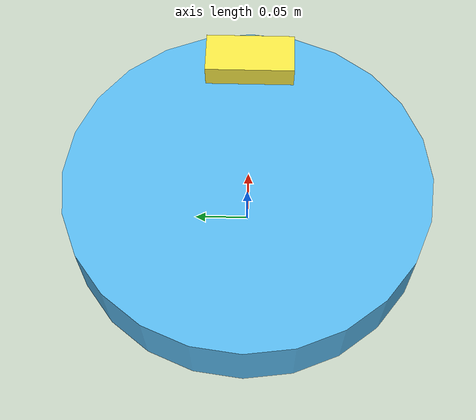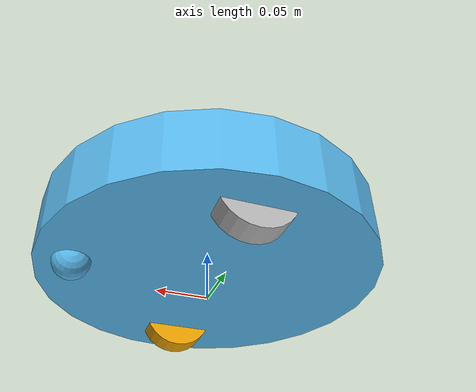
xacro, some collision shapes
<?xml version="1.0" ?>
<robot name="xerbo" xmlns:xacro="http://ros.org/wiki/xacro">
  <!-- Define intertial property macros  -->
  <xacro:macro name="box_inertia" params="m w h d">
    <inertial>
      <origin xyz="0 0 0" rpy="${pi/2} 0 ${pi/2}"/>
      <mass value="${m}"/>
      <inertia ixx="${(m/12) * (h*h + d*d)}" ixy="0.0" ixz="0.0" iyy="${(m/12) * (w*w + d*d)}" iyz="0.0" izz="${(m/12) * (w*w + h*h)}"/>
    </inertial>
  </xacro:macro>

  <xacro:include filename="$(find xerbo_description)/src/urdf/create_base.urdf.xacro" />
  <xacro:create_base wheel_separation="0.235" base_diameter="0.3485">
    <!-- "file://" syntax is compatible with both RVIZ and Gazebo -->
    <mesh filename="file://$(find xerbo_description)/src/meshes/xerbo.dae" />
  </xacro:create_base>

  <xacro:include filename="$(find xerbo_description)/src/urdf/imu_link.urdf.xacro" />
  <xacro:create_imu connected_to="base_link" />
</robot>

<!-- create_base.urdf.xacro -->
<robot xmlns:xacro="http://ros.org/wiki/xacro">
  <xacro:property name="PI" value="3.1415926535897931" />

  <xacro:macro name="create_wheel" params="prefix y_offset wheel_radius wheel_width">
    <link name="${prefix}_wheel_link">
      <inertial>
        <origin xyz="0 0 0" />
        <mass value="0.01" />
        <inertia ixx="0.001" ixy="0.0" ixz="0.0" iyy="0.001" iyz="0.0" izz="0.001" />
      </inertial>

      <visual>
        <origin xyz="0 0 0" rpy="0 ${PI/2} ${PI/2}" />
        <geometry>
          <cylinder radius="${wheel_radius}" length="${wheel_width}" />
        </geometry>
      </visual>

      <collision>
        <origin xyz="0 0 0" rpy="0 ${PI/2} ${PI/2}" />
        <geometry>
          <cylinder radius="${wheel_radius}" length="${wheel_width}" />
        </geometry>
      </collision>
    </link>

    <joint name="${prefix}_wheel_joint" type="continuous">
      <origin xyz="0 ${y_offset} 0.015" rpy="0 0 0" />
      <parent link="base_link" />
      <child link="${prefix}_wheel_link" />
      <axis xyz="0 1 0" />
    </joint>
  </xacro:macro>

  <xacro:macro name="create_base" params="diffdrive_update_rate:=40 wheel_separation wheel_radius:=0.036 wheel_width:=0.024 wheel_torque:=1.0 wheel_accel:=1.8 mass_kg:=3.5 base_diameter *mesh">
    <xacro:include filename="$(find xerbo_description)/src/urdf/create_base_gazebo.urdf.xacro" />

    <link name="base_footprint">
      <visual>
        <origin xyz="0 0 0" rpy="0 0 0" />
        <geometry>
          <box size="0.001 0.001 0.001" />
        </geometry>
        <material name="Green" />
      </visual>

      <collision>
        <origin xyz="0 0 0.017" rpy="0 0 0" />
        <geometry>
          <box size="0.001 0.001 0.001" />
        </geometry>
      </collision>
    </link>

    <link name="base_link">
      <inertial>
        <mass value="2" />
        <origin xyz="0 0 0.0" />
        <inertia ixx="0.01" ixy="0.0" ixz="0.0" iyy="0.01" iyz="0.0" izz="0.5" />
      </inertial>

      <visual>
        <origin xyz=" 0 0 0.0308" rpy="0 0 0" />
        <geometry>
          <xacro:insert_block name="mesh" />
        </geometry>
      </visual>

      <collision>
        <origin xyz="0.0 0.0 0.0308" rpy="0 0 0" />
        <geometry>
          <cylinder length="0.0611632" radius="0.16495" />
        </geometry>
      </collision>
    </link>

    <link name="wall_sensor_link">
      <inertial>
        <mass value="0.01" />
        <origin xyz="0 0 0" />
        <inertia ixx="0.001" ixy="0.0" ixz="0.0" iyy="0.001" iyz="0.0" izz="0.001" />
      </inertial>
    </link>

    <link name="left_cliff_sensor_link">
      <inertial>
        <mass value="0.01" />
        <origin xyz="0 0 0" />
        <inertia ixx="0.001" ixy="0.0" ixz="0.0" iyy="0.001" iyz="0.0" izz="0.001" />
      </inertial>
    </link>

    <link name="right_cliff_sensor_link">
      <inertial>
        <mass value="0.01" />
        <origin xyz="0 0 0" />
        <inertia ixx="0.001" ixy="0.0" ixz="0.0" iyy="0.001" iyz="0.0" izz="0.001" />
      </inertial>
    </link>

    <link name="leftfront_cliff_sensor_link">
      <inertial>
        <mass value="0.01" />
        <origin xyz="0 0 0" />
        <inertia ixx="1.0" ixy="0.0" ixz="0.0" iyy="0.01" iyz="0.0" izz="0.01" />
      </inertial>
    </link>

    <link name="rightfront_cliff_sensor_link">
      <inertial>
        <mass value="0.01" />
        <origin xyz="0 0 0" />
        <inertia ixx="0.001" ixy="0.0" ixz="0.0" iyy="0.001" iyz="0.0" izz="0.001" />
      </inertial>
    </link>

    <joint name="base_footprint_joint" type="fixed">
      <origin xyz="0 0 0.017" rpy="0 0 0" />
      <parent link="base_footprint" />
      <child link="base_link" />
    </joint>

    <joint name="base_wall_sensor_joint" type="fixed">
      <origin xyz="0.09 -0.120 0.042" rpy="0 0 -1.0" />
      <parent link="base_link" />
      <child link="wall_sensor_link" />
    </joint>

    <joint name="base_left_cliff_sensor_joint" type="fixed">
      <origin xyz="0.07 0.14 0.01" rpy="0 ${PI/2} 0" />
      <parent link="base_link" />
      <child link="left_cliff_sensor_link" />
    </joint>

    <joint name="base_right_cliff_sensor_joint" type="fixed">
      <origin xyz="0.07 -0.14 0.01" rpy="0 ${PI/2} 0" />
      <parent link="base_link" />
      <child link="right_cliff_sensor_link" />
    </joint>

    <joint name="base_leftfront_cliff_sensor_joint" type="fixed">
      <origin xyz="0.15 0.04 0.01" rpy="0 ${PI/2} 0" />
      <parent link="base_link" />
      <child link="leftfront_cliff_sensor_link" />
    </joint>

    <joint name="base_rightfront_cliff_sensor_joint" type="fixed">
      <origin xyz="0.15 -0.04 0.01" rpy="0 ${PI/2} 0" />
      <parent link="base_link" />
      <child link="rightfront_cliff_sensor_link" />
    </joint>

    <xacro:create_wheel prefix="left" y_offset="${wheel_separation / 2}" wheel_radius="${wheel_radius}" wheel_width="${wheel_width}"/>
    <xacro:create_wheel prefix="right" y_offset="${wheel_separation / -2}" wheel_radius="${wheel_radius}" wheel_width="${wheel_width}"/>

    <link name="front_wheel_link">
      <inertial>
        <origin xyz="0 0 0" />
        <mass value="0.01" />
        <inertia ixx="0.001" ixy="0.0" ixz="0.0" iyy="0.001" iyz="0.0" izz="0.001" />
      </inertial>

      <visual>
        <origin xyz="0 0 0" rpy="0 ${PI/2} ${PI/2}" />
        <geometry>
          <sphere radius="0.018" />
        </geometry>
      </visual>

      <collision>
        <origin xyz="0 0 0" rpy="0 ${PI/2} ${PI/2}" />
        <geometry>
          <sphere radius="0.018" />
        </geometry>
      </collision>
    </link>

    <!-- fixed because there's no transmission -->
    <joint name="front_castor_joint" type="fixed">
      <origin xyz="0.13 0 0.0" rpy="0 0 0" />
      <parent link="base_link" />
      <child link="front_wheel_link" />
      <axis xyz="0 1 0" />
    </joint>

    <joint name="gyro_joint" type="fixed">
      <axis xyz="0 1 0" />
      <origin xyz="0 0 0.04" rpy="0 0 0" />
      <parent link="base_link" />
      <child link="gyro_link" />
    </joint>
    <link name="gyro_link">
      <inertial>
        <mass value="0.001" />
        <origin xyz="0 0 0" rpy="0 0 0" />
        <inertia ixx="0.0001" ixy="0" ixz="0" iyy="0.000001" iyz="0" izz="0.0001" />
      </inertial>
    </link>

    <!-- Simulation sensors -->
    <xacro:sim_create_base/>
    <xacro:sim_create_wall_sensor/>
    <xacro:sim_create_cliff_sensors/>
    <xacro:sim_imu/>
  </xacro:macro>
</robot>

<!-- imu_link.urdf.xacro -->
<robot xmlns:xacro="http://ros.org/wiki/xacro">
    <xacro:property name="imu_x_size" value="0.04" />
    <xacro:property name="imu_y_size" value="0.08" />
    <xacro:property name="imu_z_size" value="0.02" />

    <xacro:macro name="create_imu" params="connected_to">
        <xacro:include filename="$(find xerbo_description)/urdf/imu_link_gazebo.urdf.xacro" />

        <link name="imu_link">
            <visual>
                <geometry>
                    <box size="${imu_x_size} ${imu_y_size} ${imu_z_size}"/>
                </geometry>
            </visual>

            <collision>
                <geometry>
                    <box size="${imu_x_size} ${imu_y_size} ${imu_z_size}"/>
                </geometry>
            </collision>

            <xacro:box_inertia m="0.1" w="0.1" d="0.1" h="0.1"/>
        </link>

        <joint name="imu_joint" type="fixed">
            <parent link="${connected_to}"/>
            <child link="imu_link"/>
            <origin xyz="0.1 0 0.1"/>
        </joint>
    </xacro:macro>
</robot>
